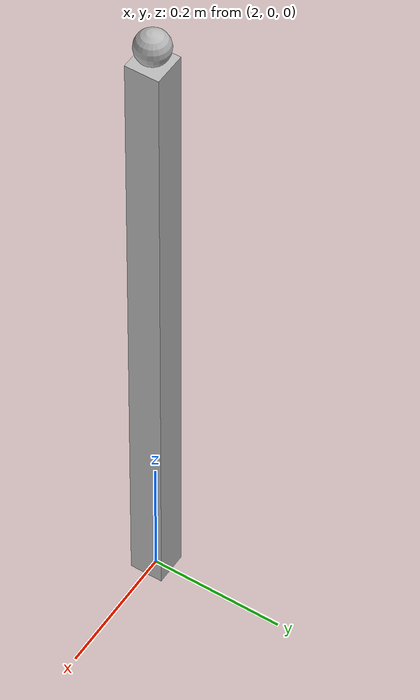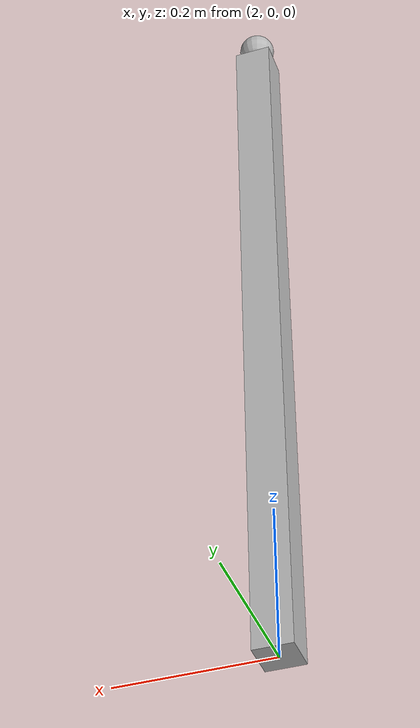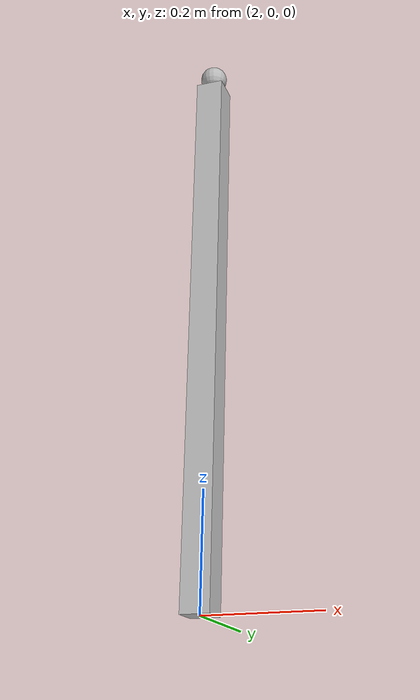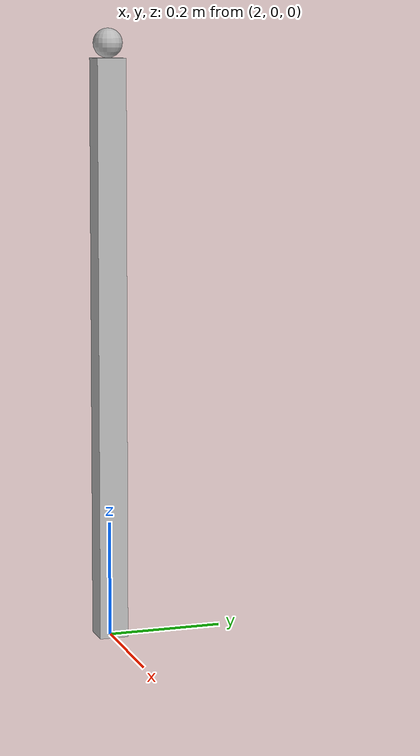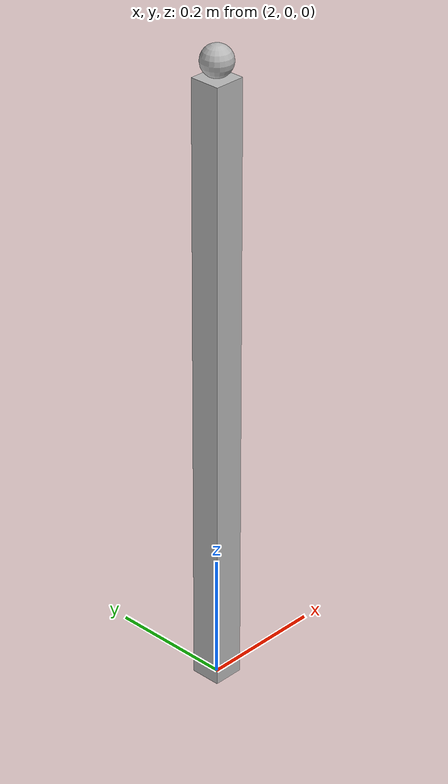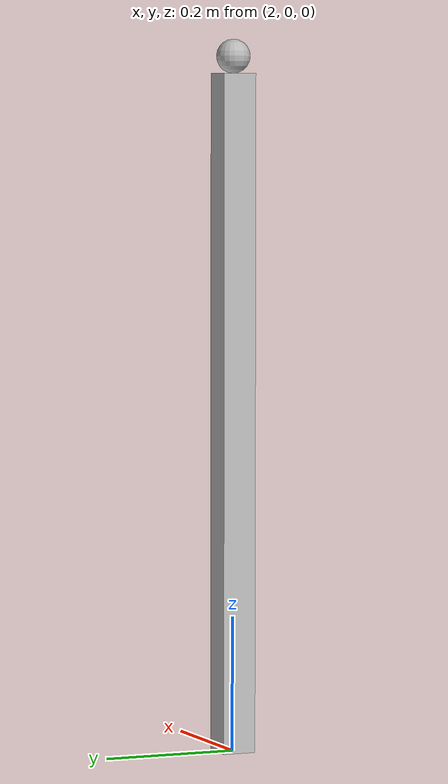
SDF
<?xml version='1.0'?>
<sdf version='1.6'>
    <model name="ball_and_stand">
	<static>true</static>
      <link name="ball_stand">
        <pose>2.0 0 0.5 0 0 0</pose>

        <collision name="ball_stand_collision">
          <geometry>
			  <box>
				<size>0.05 0.05 1.0</size>
			  </box>
          </geometry>
        </collision>

        <visual name="ball_stand_visual">
          <geometry>
			  <box>
				<size>0.05 0.05 1.0</size>
			  </box>
          </geometry>
        </visual>
      </link>

      <model name="ball">
	    <pose>2.0 0 1.025 0 0 0</pose>
		  <link name="ball">

			  <inertial>
				<mass>0.05</mass>
				<inertia>
				  <ixx>0.0001</ixx>
				  <ixy>0</ixy>
				  <ixz>0</ixz>
				  <iyy>0.0001</iyy>
				  <iyz>0</iyz>
				  <izz>0.0001</izz>
				</inertia>
			  </inertial>

			<collision name="ball_collision">
			  <geometry>
				<sphere>
					<radius>0.025</radius>
				</sphere>
			  </geometry>
			</collision>

			<visual name="ball_visual">
			  <geometry>
				<sphere>
					<radius>0.025</radius>
				</sphere>
			  </geometry>
			</visual>
        </link>
	  </model>
    </model>
</sdf>
